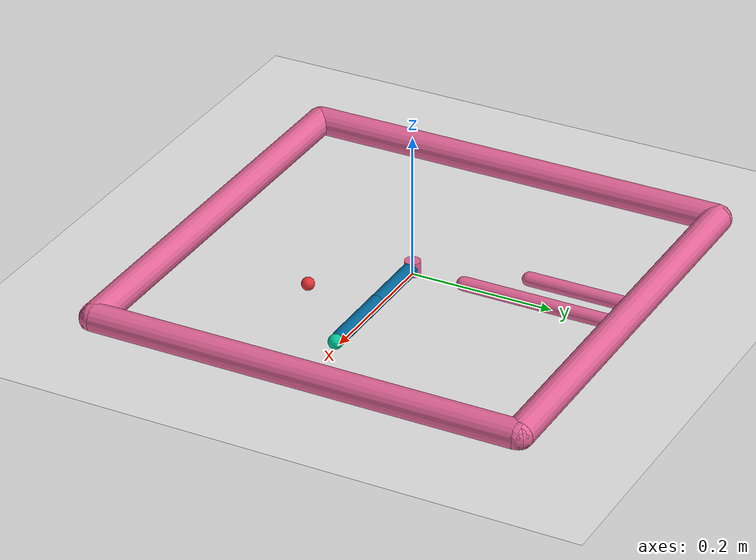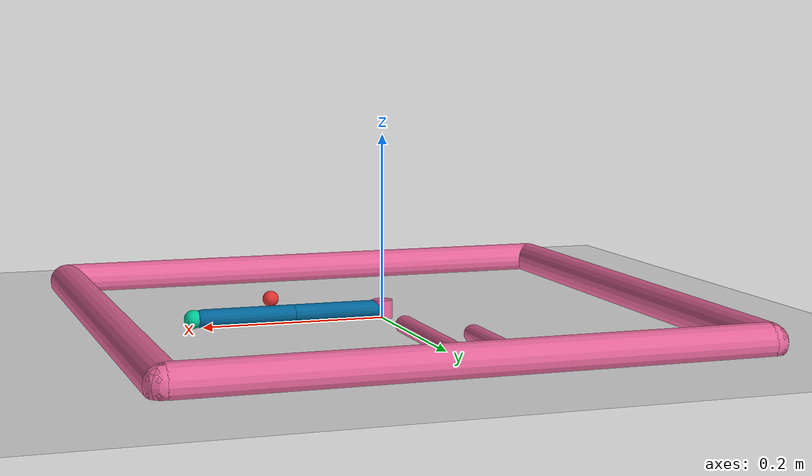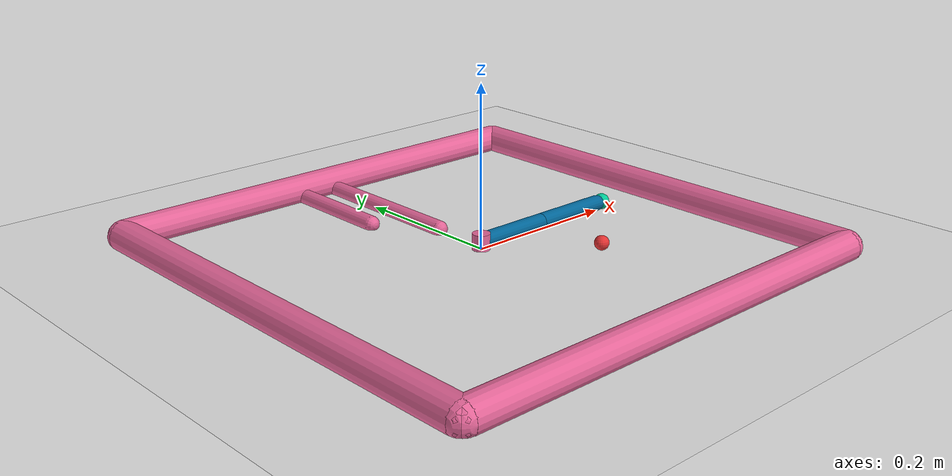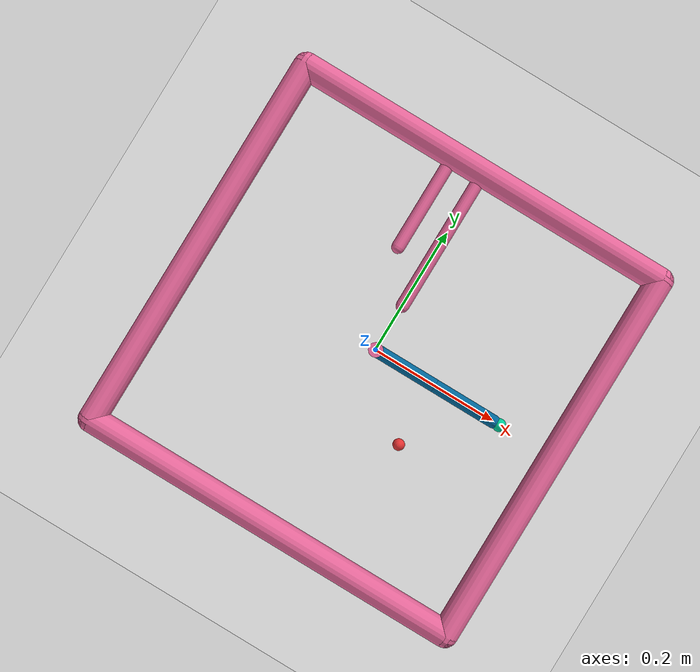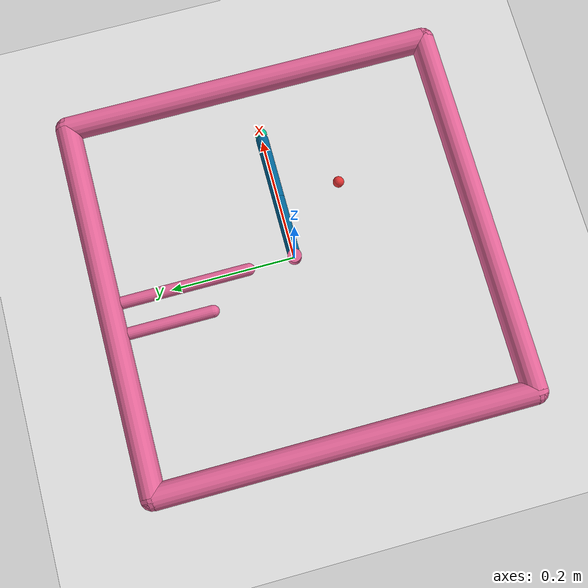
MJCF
<mujoco model="reacher">
	<compiler inertiafromgeom="true" angle="radian" coordinate="local"/>
	<default>
		<joint armature="1" limited="true" solimplimit="0 0.99 0.01" solreflimit=".005 1"/>
        <geom friction=".7" solimp="0.9 0.97 0.001" solref=".005 1"/>
	</default>
	<option gravity="0 0 -9.81" timestep="0.001" cone="elliptic"/>
	<worldbody>
		<!-- Arena -->
		<geom conaffinity="0" contype="0" name="ground" pos="0 0 0" rgba="0.9 0.9 0.9 1" size="1 1 10" type="plane"/>
		<geom conaffinity="0" fromto="-.3 -.3 .01 .3 -.3 .01" name="sideS" rgba="0.9 0.4 0.6 1" size=".02" type="capsule"/>
		<geom conaffinity="0" fromto=" .3 -.3 .01 .3  .3 .01" name="sideE" rgba="0.9 0.4 0.6 1" size=".02" type="capsule"/>
		<geom conaffinity="0" fromto="-.3  .3 .01 .3  .3 .01" name="sideN" rgba="0.9 0.4 0.6 1" size=".02" type="capsule"/>
		<geom conaffinity="0" fromto="-.3 -.3 .01 -.3 .3 .01" name="sideW" rgba="0.9 0.4 0.6 1" size=".02" type="capsule"/>

		<geom contype="1" fromto=" .0 .075 .005  .0 .3 .005" name="NE" rgba="0.9 0.4 0.6 1" size=".01" type="capsule"/>
		<geom contype="1" fromto=" -.05 .145 .005  -.05 .3 .005" name="NW" rgba="0.9 0.4 0.6 1" size=".01" type="capsule"/>

		<!-- Arm -->
		<geom conaffinity="0" contype="0" fromto="0 0 0 0 0 0.02" name="root" rgba="0.9 0.4 0.6 1" size=".011" type="cylinder"/>
		<body name="body0" pos="0 0 .01">
			<geom conaffinity="1" fromto="0 0 0 0.1 0 0" name="link0" rgba="0.0 0.4 0.6 1" size=".01" density="500" type="capsule"/>
			<joint axis="0 0 1" damping="2" limited="false" name="joint0" pos="0 0 0" type="hinge"/>
			<body name="body1" pos="0.1 0 0">
				<joint axis="0 0 1" damping="1" limited="true" name="joint1" pos="0 0 0" range="-3.0 3.0" type="hinge"/>
				<geom conaffinity="1" fromto="0 0 0 0.1 0 0" name="link1" rgba="0.0 0.4 0.6 1" size=".01" density="500" type="capsule"/>
				<body name="fingertip" pos="0.11 0 0">
					<geom conaffinity="1" name="fingertip" pos="0 0 0" rgba="0.0 0.8 0.6 1" size=".01" density="500" type="sphere"/>
				</body>
			</body>
		</body>
		<!-- Target -->
		<body name="target" pos=".1 -.1 .01">
			<joint armature="0" axis="1 0 0" damping="0" limited="true" name="target_x" pos="0 0 0" range="-.27 .27" ref=".1" stiffness="0" type="slide"/>
			<joint armature="0" axis="0 1 0" damping="0" limited="true" name="target_y" pos="0 0 0" range="-.27 .27" ref="-.1" stiffness="0" type="slide"/>
			<geom conaffinity="0" contype="0" name="target" pos="0 0 0" rgba="0.9 0.2 0.2 1" size=".009" type="sphere"/>
		</body>
	</worldbody>
	<actuator>
		<motor ctrllimited="true" ctrlrange="-1.0 1.0" gear="200.0" joint="joint0"/>
		<motor ctrllimited="true" ctrlrange="-1.0 1.0" gear="200.0" joint="joint1"/>
	</actuator>
</mujoco>
